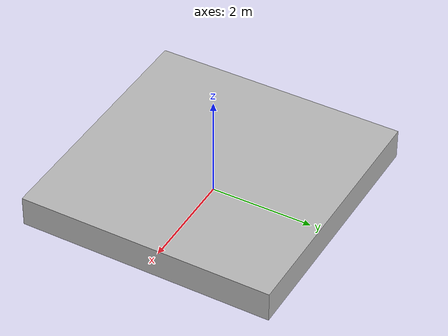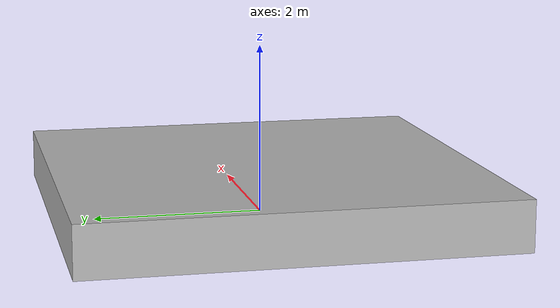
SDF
<?xml version="1.0"?>
<!-- BLOCKED proxy: uniform box only. Not a flight twin. See ../README.md -->
<sdf version="1.8">
  <model name="alpha_5x5_proxy_box">
    <pose>0 0 0.3 0 0 0</pose>
    <link name="base_link">
      <inertial>
        <mass>42</mass>
        <inertia>
          <ixx>35</ixx><iyy>50</iyy><izz>80</izz>
          <ixy>0</ixy><ixz>0</ixz><iyz>0</iyz>
        </inertia>
      </inertial>
      <collision name="col">
        <geometry><box><size>5.0 5.0 0.6</size></box></geometry>
      </collision>
      <visual name="vis">
        <geometry><box><size>5.0 5.0 0.6</size></box></geometry>
      </visual>
    </link>
  </model>
</sdf>
